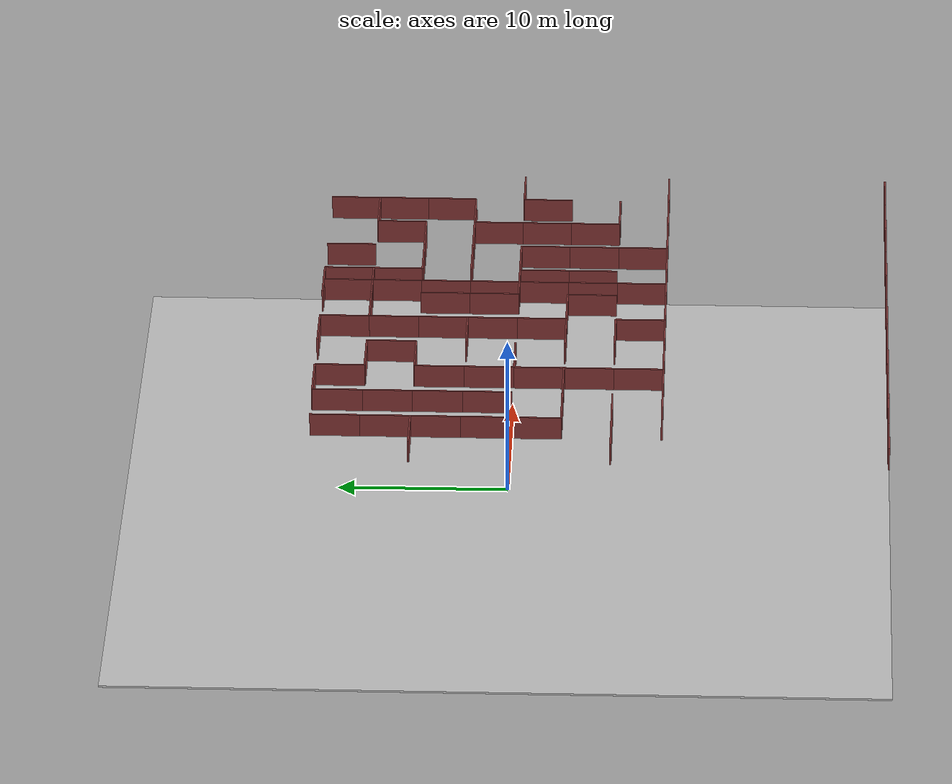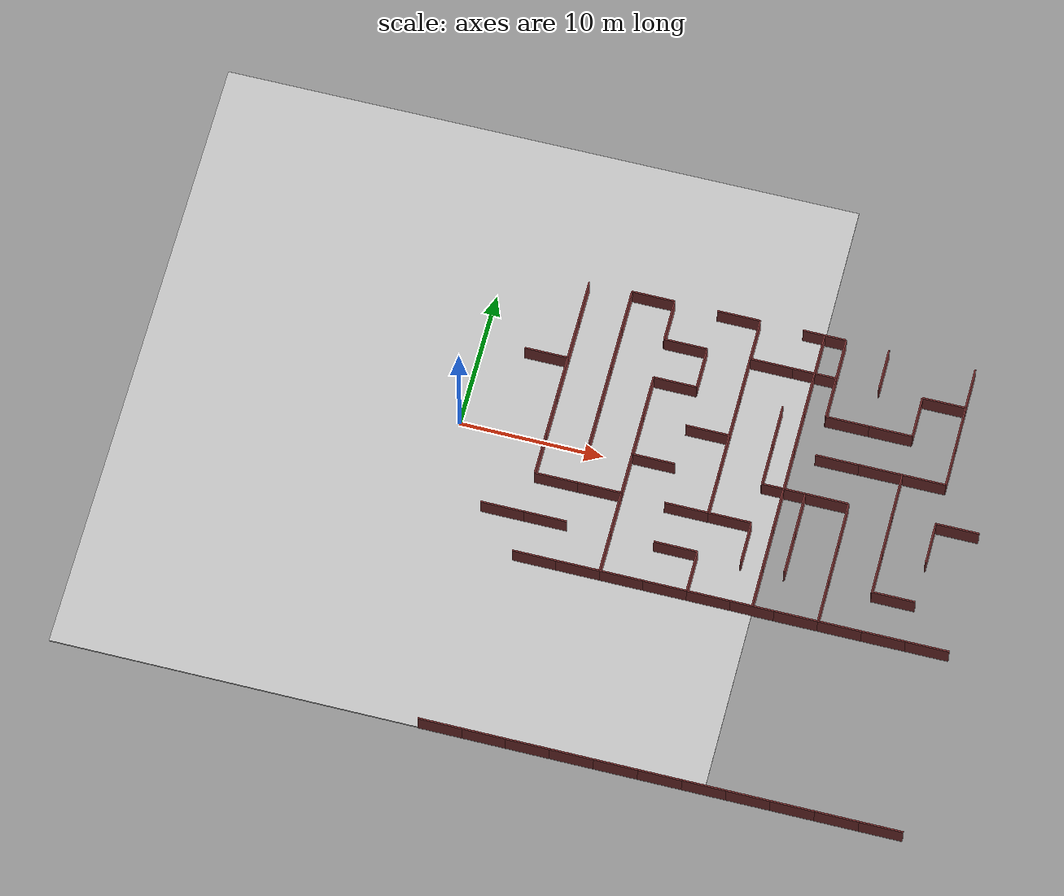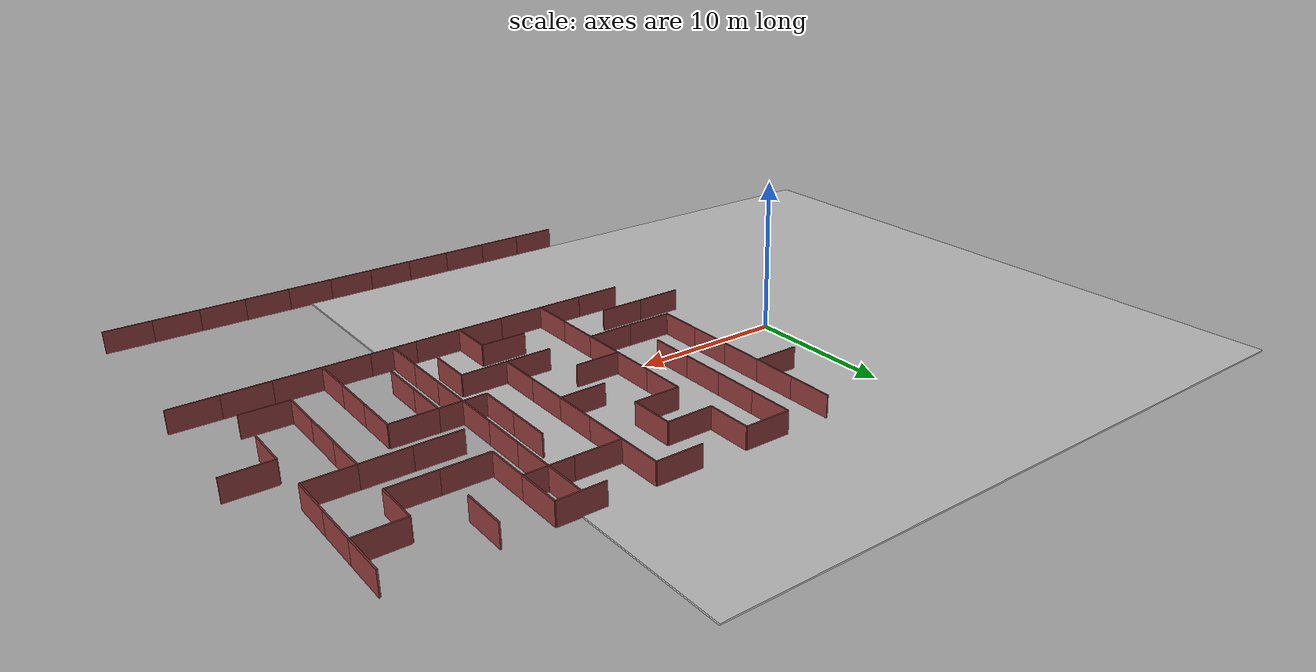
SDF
<sdf version="1.7">
 <world name="maze_world">
  <model name="ground">
   <static>true</static>
   <link name="ground_link">
    <collision name="collision"><geometry><box><size>45 45 0.1</size></box></geometry></collision>
    <visual name="visual">
     <geometry><box><size>45 45 0.1</size></box></geometry>
     <material><diffuse>0.8 0.8 0.8 1</diffuse></material>
    </visual>
   </link>
  </model>
  <model name="wall_n_8">
   <static>true</static>
   <pose>7.5 -9.0 0.75 0 0 0</pose>
   <link name="link">
    <collision name="collision"><geometry><box><size>3 0.1 1.5</size></box></geometry></collision>
    <visual name="visual">
     <geometry><box><size>3 0.1 1.5</size></box></geometry>
     <material><diffuse>0.5 0.2 0.2 1</diffuse></material>
    </visual>
   </link>
  </model>
  <model name="wall_n_9">
   <static>true</static>
   <pose>10.5 -9.0 0.75 0 0 0</pose>
   <link name="link">
    <collision name="collision"><geometry><box><size>3 0.1 1.5</size></box></geometry></collision>
    <visual name="visual">
     <geometry><box><size>3 0.1 1.5</size></box></geometry>
     <material><diffuse>0.5 0.2 0.2 1</diffuse></material>
    </visual>
   </link>
  </model>
  <model name="wall_n_10">
   <static>true</static>
   <pose>13.5 -9.0 0.75 0 0 0</pose>
   <link name="link">
    <collision name="collision"><geometry><box><size>3 0.1 1.5</size></box></geometry></collision>
    <visual name="visual">
     <geometry><box><size>3 0.1 1.5</size></box></geometry>
     <material><diffuse>0.5 0.2 0.2 1</diffuse></material>
    </visual>
   </link>
  </model>
  <model name="wall_w_11">
   <static>true</static>
   <pose>12.0 -7.5 0.75 0 0 1.5708</pose>
   <link name="link">
    <collision name="collision"><geometry><box><size>3 0.1 1.5</size></box></geometry></collision>
    <visual name="visual">
     <geometry><box><size>3 0.1 1.5</size></box></geometry>
     <material><diffuse>0.5 0.2 0.2 1</diffuse></material>
    </visual>
   </link>
  </model>
  <model name="wall_n_12">
   <static>true</static>
   <pose>16.5 -9.0 0.75 0 0 0</pose>
   <link name="link">
    <collision name="collision"><geometry><box><size>3 0.1 1.5</size></box></geometry></collision>
    <visual name="visual">
     <geometry><box><size>3 0.1 1.5</size></box></geometry>
     <material><diffuse>0.5 0.2 0.2 1</diffuse></material>
    </visual>
   </link>
  </model>
  <model name="wall_n_13">
   <static>true</static>
   <pose>19.5 -9.0 0.75 0 0 0</pose>
   <link name="link">
    <collision name="collision"><geometry><box><size>3 0.1 1.5</size></box></geometry></collision>
    <visual name="visual">
     <geometry><box><size>3 0.1 1.5</size></box></geometry>
     <material><diffuse>0.5 0.2 0.2 1</diffuse></material>
    </visual>
   </link>
  </model>
  <model name="wall_w_14">
   <static>true</static>
   <pose>18.0 -7.5 0.75 0 0 1.5708</pose>
   <link name="link">
    <collision name="collision"><geometry><box><size>3 0.1 1.5</size></box></geometry></collision>
    <visual name="visual">
     <geometry><box><size>3 0.1 1.5</size></box></geometry>
     <material><diffuse>0.5 0.2 0.2 1</diffuse></material>
    </visual>
   </link>
  </model>
  <model name="wall_n_15">
   <static>true</static>
   <pose>22.5 -9.0 0.75 0 0 0</pose>
   <link name="link">
    <collision name="collision"><geometry><box><size>3 0.1 1.5</size></box></geometry></collision>
    <visual name="visual">
     <geometry><box><size>3 0.1 1.5</size></box></geometry>
     <material><diffuse>0.5 0.2 0.2 1</diffuse></material>
    </visual>
   </link>
  </model>
  <model name="wall_n_16">
   <static>true</static>
   <pose>25.5 -9.0 0.75 0 0 0</pose>
   <link name="link">
    <collision name="collision"><geometry><box><size>3 0.1 1.5</size></box></geometry></collision>
    <visual name="visual">
     <geometry><box><size>3 0.1 1.5</size></box></geometry>
     <material><diffuse>0.5 0.2 0.2 1</diffuse></material>
    </visual>
   </link>
  </model>
  <model name="wall_n_17">
   <static>true</static>
   <pose>28.5 -9.0 0.75 0 0 0</pose>
   <link name="link">
    <collision name="collision"><geometry><box><size>3 0.1 1.5</size></box></geometry></collision>
    <visual name="visual">
     <geometry><box><size>3 0.1 1.5</size></box></geometry>
     <material><diffuse>0.5 0.2 0.2 1</diffuse></material>
    </visual>
   </link>
  </model>
  <model name="wall_w_18">
   <static>true</static>
   <pose>27.0 -7.5 0.75 0 0 1.5708</pose>
   <link name="link">
    <collision name="collision"><geometry><box><size>3 0.1 1.5</size></box></geometry></collision>
    <visual name="visual">
     <geometry><box><size>3 0.1 1.5</size></box></geometry>
     <material><diffuse>0.5 0.2 0.2 1</diffuse></material>
    </visual>
   </link>
  </model>
  <model name="wall_n_19">
   <static>true</static>
   <pose>31.5 -9.0 0.75 0 0 0</pose>
   <link name="link">
    <collision name="collision"><geometry><box><size>3 0.1 1.5</size></box></geometry></collision>
    <visual name="visual">
     <geometry><box><size>3 0.1 1.5</size></box></geometry>
     <material><diffuse>0.5 0.2 0.2 1</diffuse></material>
    </visual>
   </link>
  </model>
  <model name="wall_n_20">
   <static>true</static>
   <pose>34.5 -9.0 0.75 0 0 0</pose>
   <link name="link">
    <collision name="collision"><geometry><box><size>3 0.1 1.5</size></box></geometry></collision>
    <visual name="visual">
     <geometry><box><size>3 0.1 1.5</size></box></geometry>
     <material><diffuse>0.5 0.2 0.2 1</diffuse></material>
    </visual>
   </link>
  </model>
  <model name="wall_n_25">
   <static>true</static>
   <pose>4.5 -6.0 0.75 0 0 0</pose>
   <link name="link">
    <collision name="collision"><geometry><box><size>3 0.1 1.5</size></box></geometry></collision>
    <visual name="visual">
     <geometry><box><size>3 0.1 1.5</size></box></geometry>
     <material><diffuse>0.5 0.2 0.2 1</diffuse></material>
    </visual>
   </link>
  </model>
  <model name="wall_n_27">
   <static>true</static>
   <pose>7.5 -6.0 0.75 0 0 0</pose>
   <link name="link">
    <collision name="collision"><geometry><box><size>3 0.1 1.5</size></box></geometry></collision>
    <visual name="visual">
     <geometry><box><size>3 0.1 1.5</size></box></geometry>
     <material><diffuse>0.5 0.2 0.2 1</diffuse></material>
    </visual>
   </link>
  </model>
  <model name="wall_w_28">
   <static>true</static>
   <pose>12.0 -4.5 0.75 0 0 1.5708</pose>
   <link name="link">
    <collision name="collision"><geometry><box><size>3 0.1 1.5</size></box></geometry></collision>
    <visual name="visual">
     <geometry><box><size>3 0.1 1.5</size></box></geometry>
     <material><diffuse>0.5 0.2 0.2 1</diffuse></material>
    </visual>
   </link>
  </model>
  <model name="wall_n_29">
   <static>true</static>
   <pose>16.5 -6.0 0.75 0 0 0</pose>
   <link name="link">
    <collision name="collision"><geometry><box><size>3 0.1 1.5</size></box></geometry></collision>
    <visual name="visual">
     <geometry><box><size>3 0.1 1.5</size></box></geometry>
     <material><diffuse>0.5 0.2 0.2 1</diffuse></material>
    </visual>
   </link>
  </model>
  <model name="wall_w_30">
   <static>true</static>
   <pose>21.0 -4.5 0.75 0 0 1.5708</pose>
   <link name="link">
    <collision name="collision"><geometry><box><size>3 0.1 1.5</size></box></geometry></collision>
    <visual name="visual">
     <geometry><box><size>3 0.1 1.5</size></box></geometry>
     <material><diffuse>0.5 0.2 0.2 1</diffuse></material>
    </visual>
   </link>
  </model>
  <model name="wall_w_31">
   <static>true</static>
   <pose>24.0 -4.5 0.75 0 0 1.5708</pose>
   <link name="link">
    <collision name="collision"><geometry><box><size>3 0.1 1.5</size></box></geometry></collision>
    <visual name="visual">
     <geometry><box><size>3 0.1 1.5</size></box></geometry>
     <material><diffuse>0.5 0.2 0.2 1</diffuse></material>
    </visual>
   </link>
  </model>
  <model name="wall_w_32">
   <static>true</static>
   <pose>27.0 -4.5 0.75 0 0 1.5708</pose>
   <link name="link">
    <collision name="collision"><geometry><box><size>3 0.1 1.5</size></box></geometry></collision>
    <visual name="visual">
     <geometry><box><size>3 0.1 1.5</size></box></geometry>
     <material><diffuse>0.5 0.2 0.2 1</diffuse></material>
    </visual>
   </link>
  </model>
  <model name="wall_n_33">
   <static>true</static>
   <pose>31.5 -6.0 0.75 0 0 0</pose>
   <link name="link">
    <collision name="collision"><geometry><box><size>3 0.1 1.5</size></box></geometry></collision>
    <visual name="visual">
     <geometry><box><size>3 0.1 1.5</size></box></geometry>
     <material><diffuse>0.5 0.2 0.2 1</diffuse></material>
    </visual>
   </link>
  </model>
  <model name="wall_w_34">
   <static>true</static>
   <pose>30.0 -4.5 0.75 0 0 1.5708</pose>
   <link name="link">
    <collision name="collision"><geometry><box><size>3 0.1 1.5</size></box></geometry></collision>
    <visual name="visual">
     <geometry><box><size>3 0.1 1.5</size></box></geometry>
     <material><diffuse>0.5 0.2 0.2 1</diffuse></material>
    </visual>
   </link>
  </model>
  <model name="wall_n_40">
   <static>true</static>
   <pose>7.5 -3.0 0.75 0 0 0</pose>
   <link name="link">
    <collision name="collision"><geometry><box><size>3 0.1 1.5</size></box></geometry></collision>
    <visual name="visual">
     <geometry><box><size>3 0.1 1.5</size></box></geometry>
     <material><diffuse>0.5 0.2 0.2 1</diffuse></material>
    </visual>
   </link>
  </model>
  <model name="wall_w_41">
   <static>true</static>
   <pose>6.0 -1.5 0.75 0 0 1.5708</pose>
   <link name="link">
    <collision name="collision"><geometry><box><size>3 0.1 1.5</size></box></geometry></collision>
    <visual name="visual">
     <geometry><box><size>3 0.1 1.5</size></box></geometry>
     <material><diffuse>0.5 0.2 0.2 1</diffuse></material>
    </visual>
   </link>
  </model>
  <model name="wall_n_42">
   <static>true</static>
   <pose>10.5 -3.0 0.75 0 0 0</pose>
   <link name="link">
    <collision name="collision"><geometry><box><size>3 0.1 1.5</size></box></geometry></collision>
    <visual name="visual">
     <geometry><box><size>3 0.1 1.5</size></box></geometry>
     <material><diffuse>0.5 0.2 0.2 1</diffuse></material>
    </visual>
   </link>
  </model>
  <model name="wall_w_43">
   <static>true</static>
   <pose>12.0 -1.5 0.75 0 0 1.5708</pose>
   <link name="link">
    <collision name="collision"><geometry><box><size>3 0.1 1.5</size></box></geometry></collision>
    <visual name="visual">
     <geometry><box><size>3 0.1 1.5</size></box></geometry>
     <material><diffuse>0.5 0.2 0.2 1</diffuse></material>
    </visual>
   </link>
  </model>
  <model name="wall_n_44">
   <static>true</static>
   <pose>16.5 -3.0 0.75 0 0 0</pose>
   <link name="link">
    <collision name="collision"><geometry><box><size>3 0.1 1.5</size></box></geometry></collision>
    <visual name="visual">
     <geometry><box><size>3 0.1 1.5</size></box></geometry>
     <material><diffuse>0.5 0.2 0.2 1</diffuse></material>
    </visual>
   </link>
  </model>
  <model name="wall_n_45">
   <static>true</static>
   <pose>19.5 -3.0 0.75 0 0 0</pose>
   <link name="link">
    <collision name="collision"><geometry><box><size>3 0.1 1.5</size></box></geometry></collision>
    <visual name="visual">
     <geometry><box><size>3 0.1 1.5</size></box></geometry>
     <material><diffuse>0.5 0.2 0.2 1</diffuse></material>
    </visual>
   </link>
  </model>
  <model name="wall_w_46">
   <static>true</static>
   <pose>18.0 -1.5 0.75 0 0 1.5708</pose>
   <link name="link">
    <collision name="collision"><geometry><box><size>3 0.1 1.5</size></box></geometry></collision>
    <visual name="visual">
     <geometry><box><size>3 0.1 1.5</size></box></geometry>
     <material><diffuse>0.5 0.2 0.2 1</diffuse></material>
    </visual>
   </link>
  </model>
  <model name="wall_w_47">
   <static>true</static>
   <pose>24.0 -1.5 0.75 0 0 1.5708</pose>
   <link name="link">
    <collision name="collision"><geometry><box><size>3 0.1 1.5</size></box></geometry></collision>
    <visual name="visual">
     <geometry><box><size>3 0.1 1.5</size></box></geometry>
     <material><diffuse>0.5 0.2 0.2 1</diffuse></material>
    </visual>
   </link>
  </model>
  <model name="wall_w_48">
   <static>true</static>
   <pose>27.0 -1.5 0.75 0 0 1.5708</pose>
   <link name="link">
    <collision name="collision"><geometry><box><size>3 0.1 1.5</size></box></geometry></collision>
    <visual name="visual">
     <geometry><box><size>3 0.1 1.5</size></box></geometry>
     <material><diffuse>0.5 0.2 0.2 1</diffuse></material>
    </visual>
   </link>
  </model>
  <model name="wall_w_49">
   <static>true</static>
   <pose>30.0 -1.5 0.75 0 0 1.5708</pose>
   <link name="link">
    <collision name="collision"><geometry><box><size>3 0.1 1.5</size></box></geometry></collision>
    <visual name="visual">
     <geometry><box><size>3 0.1 1.5</size></box></geometry>
     <material><diffuse>0.5 0.2 0.2 1</diffuse></material>
    </visual>
   </link>
  </model>
  <model name="wall_w_50">
   <static>true</static>
   <pose>33.0 -1.5 0.75 0 0 1.5708</pose>
   <link name="link">
    <collision name="collision"><geometry><box><size>3 0.1 1.5</size></box></geometry></collision>
    <visual name="visual">
     <geometry><box><size>3 0.1 1.5</size></box></geometry>
     <material><diffuse>0.5 0.2 0.2 1</diffuse></material>
    </visual>
   </link>
  </model>
  <model name="wall_w_57">
   <static>true</static>
   <pose>6.0 1.5 0.75 0 0 1.5708</pose>
   <link name="link">
    <collision name="collision"><geometry><box><size>3 0.1 1.5</size></box></geometry></collision>
    <visual name="visual">
     <geometry><box><size>3 0.1 1.5</size></box></geometry>
     <material><diffuse>0.5 0.2 0.2 1</diffuse></material>
    </visual>
   </link>
  </model>
  <model name="wall_w_58">
   <static>true</static>
   <pose>9.0 1.5 0.75 0 0 1.5708</pose>
   <link name="link">
    <collision name="collision"><geometry><box><size>3 0.1 1.5</size></box></geometry></collision>
    <visual name="visual">
     <geometry><box><size>3 0.1 1.5</size></box></geometry>
     <material><diffuse>0.5 0.2 0.2 1</diffuse></material>
    </visual>
   </link>
  </model>
  <model name="wall_n_59">
   <static>true</static>
   <pose>13.5 0.0 0.75 0 0 0</pose>
   <link name="link">
    <collision name="collision"><geometry><box><size>3 0.1 1.5</size></box></geometry></collision>
    <visual name="visual">
     <geometry><box><size>3 0.1 1.5</size></box></geometry>
     <material><diffuse>0.5 0.2 0.2 1</diffuse></material>
    </visual>
   </link>
  </model>
  <model name="wall_w_60">
   <static>true</static>
   <pose>12.0 1.5 0.75 0 0 1.5708</pose>
   <link name="link">
    <collision name="collision"><geometry><box><size>3 0.1 1.5</size></box></geometry></collision>
    <visual name="visual">
     <geometry><box><size>3 0.1 1.5</size></box></geometry>
     <material><diffuse>0.5 0.2 0.2 1</diffuse></material>
    </visual>
   </link>
  </model>
  <model name="wall_w_61">
   <static>true</static>
   <pose>18.0 1.5 0.75 0 0 1.5708</pose>
   <link name="link">
    <collision name="collision"><geometry><box><size>3 0.1 1.5</size></box></geometry></collision>
    <visual name="visual">
     <geometry><box><size>3 0.1 1.5</size></box></geometry>
     <material><diffuse>0.5 0.2 0.2 1</diffuse></material>
    </visual>
   </link>
  </model>
  <model name="wall_n_62">
   <static>true</static>
   <pose>22.5 0.0 0.75 0 0 0</pose>
   <link name="link">
    <collision name="collision"><geometry><box><size>3 0.1 1.5</size></box></geometry></collision>
    <visual name="visual">
     <geometry><box><size>3 0.1 1.5</size></box></geometry>
     <material><diffuse>0.5 0.2 0.2 1</diffuse></material>
    </visual>
   </link>
  </model>
  <model name="wall_w_63">
   <static>true</static>
   <pose>21.0 1.5 0.75 0 0 1.5708</pose>
   <link name="link">
    <collision name="collision"><geometry><box><size>3 0.1 1.5</size></box></geometry></collision>
    <visual name="visual">
     <geometry><box><size>3 0.1 1.5</size></box></geometry>
     <material><diffuse>0.5 0.2 0.2 1</diffuse></material>
    </visual>
   </link>
  </model>
  <model name="wall_n_64">
   <static>true</static>
   <pose>25.5 0.0 0.75 0 0 0</pose>
   <link name="link">
    <collision name="collision"><geometry><box><size>3 0.1 1.5</size></box></geometry></collision>
    <visual name="visual">
     <geometry><box><size>3 0.1 1.5</size></box></geometry>
     <material><diffuse>0.5 0.2 0.2 1</diffuse></material>
    </visual>
   </link>
  </model>
  <model name="wall_w_65">
   <static>true</static>
   <pose>30.0 1.5 0.75 0 0 1.5708</pose>
   <link name="link">
    <collision name="collision"><geometry><box><size>3 0.1 1.5</size></box></geometry></collision>
    <visual name="visual">
     <geometry><box><size>3 0.1 1.5</size></box></geometry>
     <material><diffuse>0.5 0.2 0.2 1</diffuse></material>
    </visual>
   </link>
  </model>
  <model name="wall_n_66">
   <static>true</static>
   <pose>34.5 0.0 0.75 0 0 0</pose>
   <link name="link">
    <collision name="collision"><geometry><box><size>3 0.1 1.5</size></box></geometry></collision>
    <visual name="visual">
     <geometry><box><size>3 0.1 1.5</size></box></geometry>
     <material><diffuse>0.5 0.2 0.2 1</diffuse></material>
    </visual>
   </link>
  </model>
  <model name="wall_w_71">
   <static>true</static>
   <pose>6.0 4.5 0.75 0 0 1.5708</pose>
   <link name="link">
    <collision name="collision"><geometry><box><size>3 0.1 1.5</size></box></geometry></collision>
    <visual name="visual">
     <geometry><box><size>3 0.1 1.5</size></box></geometry>
     <material><diffuse>0.5 0.2 0.2 1</diffuse></material>
    </visual>
   </link>
  </model>
  <model name="wall_w_72">
   <static>true</static>
   <pose>9.0 4.5 0.75 0 0 1.5708</pose>
   <link name="link">
    <collision name="collision"><geometry><box><size>3 0.1 1.5</size></box></geometry></collision>
    <visual name="visual">
     <geometry><box><size>3 0.1 1.5</size></box></geometry>
     <material><diffuse>0.5 0.2 0.2 1</diffuse></material>
    </visual>
   </link>
  </model>
  <model name="wall_w_73">
   <static>true</static>
   <pose>12.0 4.5 0.75 0 0 1.5708</pose>
   <link name="link">
    <collision name="collision"><geometry><box><size>3 0.1 1.5</size></box></geometry></collision>
    <visual name="visual">
     <geometry><box><size>3 0.1 1.5</size></box></geometry>
     <material><diffuse>0.5 0.2 0.2 1</diffuse></material>
    </visual>
   </link>
  </model>
  <model name="wall_n_74">
   <static>true</static>
   <pose>16.5 3.0 0.75 0 0 0</pose>
   <link name="link">
    <collision name="collision"><geometry><box><size>3 0.1 1.5</size></box></geometry></collision>
    <visual name="visual">
     <geometry><box><size>3 0.1 1.5</size></box></geometry>
     <material><diffuse>0.5 0.2 0.2 1</diffuse></material>
    </visual>
   </link>
  </model>
  <model name="wall_w_75">
   <static>true</static>
   <pose>18.0 4.5 0.75 0 0 1.5708</pose>
   <link name="link">
    <collision name="collision"><geometry><box><size>3 0.1 1.5</size></box></geometry></collision>
    <visual name="visual">
     <geometry><box><size>3 0.1 1.5</size></box></geometry>
     <material><diffuse>0.5 0.2 0.2 1</diffuse></material>
    </visual>
   </link>
  </model>
  <model name="wall_w_76">
   <static>true</static>
   <pose>21.0 4.5 0.75 0 0 1.5708</pose>
   <link name="link">
    <collision name="collision"><geometry><box><size>3 0.1 1.5</size></box></geometry></collision>
    <visual name="visual">
     <geometry><box><size>3 0.1 1.5</size></box></geometry>
     <material><diffuse>0.5 0.2 0.2 1</diffuse></material>
    </visual>
   </link>
  </model>
  <model name="wall_n_77">
   <static>true</static>
   <pose>25.5 3.0 0.75 0 0 0</pose>
   <link name="link">
    <collision name="collision"><geometry><box><size>3 0.1 1.5</size></box></geometry></collision>
    <visual name="visual">
     <geometry><box><size>3 0.1 1.5</size></box></geometry>
     <material><diffuse>0.5 0.2 0.2 1</diffuse></material>
    </visual>
   </link>
  </model>
  <model name="wall_n_78">
   <static>true</static>
   <pose>28.5 3.0 0.75 0 0 0</pose>
   <link name="link">
    <collision name="collision"><geometry><box><size>3 0.1 1.5</size></box></geometry></collision>
    <visual name="visual">
     <geometry><box><size>3 0.1 1.5</size></box></geometry>
     <material><diffuse>0.5 0.2 0.2 1</diffuse></material>
    </visual>
   </link>
  </model>
  <model name="wall_n_79">
   <static>true</static>
   <pose>31.5 3.0 0.75 0 0 0</pose>
   <link name="link">
    <collision name="collision"><geometry><box><size>3 0.1 1.5</size></box></geometry></collision>
    <visual name="visual">
     <geometry><box><size>3 0.1 1.5</size></box></geometry>
     <material><diffuse>0.5 0.2 0.2 1</diffuse></material>
    </visual>
   </link>
  </model>
  <model name="wall_w_80">
   <static>true</static>
   <pose>33.0 4.5 0.75 0 0 1.5708</pose>
   <link name="link">
    <collision name="collision"><geometry><box><size>3 0.1 1.5</size></box></geometry></collision>
    <visual name="visual">
     <geometry><box><size>3 0.1 1.5</size></box></geometry>
     <material><diffuse>0.5 0.2 0.2 1</diffuse></material>
    </visual>
   </link>
  </model>
  <model name="wall_n_86">
   <static>true</static>
   <pose>4.5 6.0 0.75 0 0 0</pose>
   <link name="link">
    <collision name="collision"><geometry><box><size>3 0.1 1.5</size></box></geometry></collision>
    <visual name="visual">
     <geometry><box><size>3 0.1 1.5</size></box></geometry>
     <material><diffuse>0.5 0.2 0.2 1</diffuse></material>
    </visual>
   </link>
  </model>
  <model name="wall_w_87">
   <static>true</static>
   <pose>6.0 7.5 0.75 0 0 1.5708</pose>
   <link name="link">
    <collision name="collision"><geometry><box><size>3 0.1 1.5</size></box></geometry></collision>
    <visual name="visual">
     <geometry><box><size>3 0.1 1.5</size></box></geometry>
     <material><diffuse>0.5 0.2 0.2 1</diffuse></material>
    </visual>
   </link>
  </model>
  <model name="wall_w_88">
   <static>true</static>
   <pose>9.0 7.5 0.75 0 0 1.5708</pose>
   <link name="link">
    <collision name="collision"><geometry><box><size>3 0.1 1.5</size></box></geometry></collision>
    <visual name="visual">
     <geometry><box><size>3 0.1 1.5</size></box></geometry>
     <material><diffuse>0.5 0.2 0.2 1</diffuse></material>
    </visual>
   </link>
  </model>
  <model name="wall_n_89">
   <static>true</static>
   <pose>13.5 6.0 0.75 0 0 0</pose>
   <link name="link">
    <collision name="collision"><geometry><box><size>3 0.1 1.5</size></box></geometry></collision>
    <visual name="visual">
     <geometry><box><size>3 0.1 1.5</size></box></geometry>
     <material><diffuse>0.5 0.2 0.2 1</diffuse></material>
    </visual>
   </link>
  </model>
  <model name="wall_w_90">
   <static>true</static>
   <pose>15.0 7.5 0.75 0 0 1.5708</pose>
   <link name="link">
    <collision name="collision"><geometry><box><size>3 0.1 1.5</size></box></geometry></collision>
    <visual name="visual">
     <geometry><box><size>3 0.1 1.5</size></box></geometry>
     <material><diffuse>0.5 0.2 0.2 1</diffuse></material>
    </visual>
   </link>
  </model>
  <model name="wall_w_91">
   <static>true</static>
   <pose>18.0 7.5 0.75 0 0 1.5708</pose>
   <link name="link">
    <collision name="collision"><geometry><box><size>3 0.1 1.5</size></box></geometry></collision>
    <visual name="visual">
     <geometry><box><size>3 0.1 1.5</size></box></geometry>
     <material><diffuse>0.5 0.2 0.2 1</diffuse></material>
    </visual>
   </link>
  </model>
  <model name="wall_n_92">
   <static>true</static>
   <pose>25.5 6.0 0.75 0 0 0</pose>
   <link name="link">
    <collision name="collision"><geometry><box><size>3 0.1 1.5</size></box></geometry></collision>
    <visual name="visual">
     <geometry><box><size>3 0.1 1.5</size></box></geometry>
     <material><diffuse>0.5 0.2 0.2 1</diffuse></material>
    </visual>
   </link>
  </model>
  <model name="wall_w_93">
   <static>true</static>
   <pose>24.0 7.5 0.75 0 0 1.5708</pose>
   <link name="link">
    <collision name="collision"><geometry><box><size>3 0.1 1.5</size></box></geometry></collision>
    <visual name="visual">
     <geometry><box><size>3 0.1 1.5</size></box></geometry>
     <material><diffuse>0.5 0.2 0.2 1</diffuse></material>
    </visual>
   </link>
  </model>
  <model name="wall_n_94">
   <static>true</static>
   <pose>28.5 6.0 0.75 0 0 0</pose>
   <link name="link">
    <collision name="collision"><geometry><box><size>3 0.1 1.5</size></box></geometry></collision>
    <visual name="visual">
     <geometry><box><size>3 0.1 1.5</size></box></geometry>
     <material><diffuse>0.5 0.2 0.2 1</diffuse></material>
    </visual>
   </link>
  </model>
  <model name="wall_w_95">
   <static>true</static>
   <pose>30.0 7.5 0.75 0 0 1.5708</pose>
   <link name="link">
    <collision name="collision"><geometry><box><size>3 0.1 1.5</size></box></geometry></collision>
    <visual name="visual">
     <geometry><box><size>3 0.1 1.5</size></box></geometry>
     <material><diffuse>0.5 0.2 0.2 1</diffuse></material>
    </visual>
   </link>
  </model>
  <model name="wall_w_96">
   <static>true</static>
   <pose>33.0 7.5 0.75 0 0 1.5708</pose>
   <link name="link">
    <collision name="collision"><geometry><box><size>3 0.1 1.5</size></box></geometry></collision>
    <visual name="visual">
     <geometry><box><size>3 0.1 1.5</size></box></geometry>
     <material><diffuse>0.5 0.2 0.2 1</diffuse></material>
    </visual>
   </link>
  </model>
  <model name="wall_w_101">
   <static>true</static>
   <pose>6.0 10.5 0.75 0 0 1.5708</pose>
   <link name="link">
    <collision name="collision"><geometry><box><size>3 0.1 1.5</size></box></geometry></collision>
    <visual name="visual">
     <geometry><box><size>3 0.1 1.5</size></box></geometry>
     <material><diffuse>0.5 0.2 0.2 1</diffuse></material>
    </visual>
   </link>
  </model>
  <model name="wall_w_102">
   <static>true</static>
   <pose>9.0 10.5 0.75 0 0 1.5708</pose>
   <link name="link">
    <collision name="collision"><geometry><box><size>3 0.1 1.5</size></box></geometry></collision>
    <visual name="visual">
     <geometry><box><size>3 0.1 1.5</size></box></geometry>
     <material><diffuse>0.5 0.2 0.2 1</diffuse></material>
    </visual>
   </link>
  </model>
  <model name="wall_n_103">
   <static>true</static>
   <pose>13.5 9.0 0.75 0 0 0</pose>
   <link name="link">
    <collision name="collision"><geometry><box><size>3 0.1 1.5</size></box></geometry></collision>
    <visual name="visual">
     <geometry><box><size>3 0.1 1.5</size></box></geometry>
     <material><diffuse>0.5 0.2 0.2 1</diffuse></material>
    </visual>
   </link>
  </model>
  <model name="wall_w_104">
   <static>true</static>
   <pose>12.0 10.5 0.75 0 0 1.5708</pose>
   <link name="link">
    <collision name="collision"><geometry><box><size>3 0.1 1.5</size></box></geometry></collision>
    <visual name="visual">
     <geometry><box><size>3 0.1 1.5</size></box></geometry>
     <material><diffuse>0.5 0.2 0.2 1</diffuse></material>
    </visual>
   </link>
  </model>
  <model name="wall_n_105">
   <static>true</static>
   <pose>19.5 9.0 0.75 0 0 0</pose>
   <link name="link">
    <collision name="collision"><geometry><box><size>3 0.1 1.5</size></box></geometry></collision>
    <visual name="visual">
     <geometry><box><size>3 0.1 1.5</size></box></geometry>
     <material><diffuse>0.5 0.2 0.2 1</diffuse></material>
    </visual>
   </link>
  </model>
  <model name="wall_w_106">
   <static>true</static>
   <pose>18.0 10.5 0.75 0 0 1.5708</pose>
   <link name="link">
    <collision name="collision"><geometry><box><size>3 0.1 1.5</size></box></geometry></collision>
    <visual name="visual">
     <geometry><box><size>3 0.1 1.5</size></box></geometry>
     <material><diffuse>0.5 0.2 0.2 1</diffuse></material>
    </visual>
   </link>
  </model>
  <model name="wall_n_107">
   <static>true</static>
   <pose>22.5 9.0 0.75 0 0 0</pose>
   <link name="link">
    <collision name="collision"><geometry><box><size>3 0.1 1.5</size></box></geometry></collision>
    <visual name="visual">
     <geometry><box><size>3 0.1 1.5</size></box></geometry>
     <material><diffuse>0.5 0.2 0.2 1</diffuse></material>
    </visual>
   </link>
  </model>
  <model name="wall_w_108">
   <static>true</static>
   <pose>24.0 10.5 0.75 0 0 1.5708</pose>
   <link name="link">
    <collision name="collision"><geometry><box><size>3 0.1 1.5</size></box></geometry></collision>
    <visual name="visual">
     <geometry><box><size>3 0.1 1.5</size></box></geometry>
     <material><diffuse>0.5 0.2 0.2 1</diffuse></material>
    </visual>
   </link>
  </model>
  <model name="wall_w_109">
   <static>true</static>
   <pose>27.0 10.5 0.75 0 0 1.5708</pose>
   <link name="link">
    <collision name="collision"><geometry><box><size>3 0.1 1.5</size></box></geometry></collision>
    <visual name="visual">
     <geometry><box><size>3 0.1 1.5</size></box></geometry>
     <material><diffuse>0.5 0.2 0.2 1</diffuse></material>
    </visual>
   </link>
  </model>
  <model name="wall_n_110">
   <static>true</static>
   <pose>31.5 9.0 0.75 0 0 0</pose>
   <link name="link">
    <collision name="collision"><geometry><box><size>3 0.1 1.5</size></box></geometry></collision>
    <visual name="visual">
     <geometry><box><size>3 0.1 1.5</size></box></geometry>
     <material><diffuse>0.5 0.2 0.2 1</diffuse></material>
    </visual>
   </link>
  </model>
  <model name="wall_w_111">
   <static>true</static>
   <pose>33.0 10.5 0.75 0 0 1.5708</pose>
   <link name="link">
    <collision name="collision"><geometry><box><size>3 0.1 1.5</size></box></geometry></collision>
    <visual name="visual">
     <geometry><box><size>3 0.1 1.5</size></box></geometry>
     <material><diffuse>0.5 0.2 0.2 1</diffuse></material>
    </visual>
   </link>
  </model>
  <model name="wall_n_118">
   <static>true</static>
   <pose>10.5 12.0 0.75 0 0 0</pose>
   <link name="link">
    <collision name="collision"><geometry><box><size>3 0.1 1.5</size></box></geometry></collision>
    <visual name="visual">
     <geometry><box><size>3 0.1 1.5</size></box></geometry>
     <material><diffuse>0.5 0.2 0.2 1</diffuse></material>
    </visual>
   </link>
  </model>
  <model name="wall_n_119">
   <static>true</static>
   <pose>16.5 12.0 0.75 0 0 0</pose>
   <link name="link">
    <collision name="collision"><geometry><box><size>3 0.1 1.5</size></box></geometry></collision>
    <visual name="visual">
     <geometry><box><size>3 0.1 1.5</size></box></geometry>
     <material><diffuse>0.5 0.2 0.2 1</diffuse></material>
    </visual>
   </link>
  </model>
  <model name="wall_n_121">
   <static>true</static>
   <pose>22.5 12.0 0.75 0 0 0</pose>
   <link name="link">
    <collision name="collision"><geometry><box><size>3 0.1 1.5</size></box></geometry></collision>
    <visual name="visual">
     <geometry><box><size>3 0.1 1.5</size></box></geometry>
     <material><diffuse>0.5 0.2 0.2 1</diffuse></material>
    </visual>
   </link>
  </model>
  <model name="wall_bottom_4">
   <static>true</static>
   <pose>4.5 -22.5 0.75 0 0 0</pose>
   <link name="link">
    <collision name="collision"><geometry><box><size>3 0.1 1.5</size></box></geometry></collision>
    <visual name="visual">
     <geometry><box><size>3 0.1 1.5</size></box></geometry>
     <material><diffuse>0.5 0.2 0.2 1</diffuse></material>
    </visual>
   </link>
  </model>
  <model name="wall_bottom_5">
   <static>true</static>
   <pose>7.5 -22.5 0.75 0 0 0</pose>
   <link name="link">
    <collision name="collision"><geometry><box><size>3 0.1 1.5</size></box></geometry></collision>
    <visual name="visual">
     <geometry><box><size>3 0.1 1.5</size></box></geometry>
     <material><diffuse>0.5 0.2 0.2 1</diffuse></material>
    </visual>
   </link>
  </model>
  <model name="wall_bottom_6">
   <static>true</static>
   <pose>10.5 -22.5 0.75 0 0 0</pose>
   <link name="link">
    <collision name="collision"><geometry><box><size>3 0.1 1.5</size></box></geometry></collision>
    <visual name="visual">
     <geometry><box><size>3 0.1 1.5</size></box></geometry>
     <material><diffuse>0.5 0.2 0.2 1</diffuse></material>
    </visual>
   </link>
  </model>
  <model name="wall_bottom_7">
   <static>true</static>
   <pose>13.5 -22.5 0.75 0 0 0</pose>
   <link name="link">
    <collision name="collision"><geometry><box><size>3 0.1 1.5</size></box></geometry></collision>
    <visual name="visual">
     <geometry><box><size>3 0.1 1.5</size></box></geometry>
     <material><diffuse>0.5 0.2 0.2 1</diffuse></material>
    </visual>
   </link>
  </model>
  <model name="wall_bottom_8">
   <static>true</static>
   <pose>16.5 -22.5 0.75 0 0 0</pose>
   <link name="link">
    <collision name="collision"><geometry><box><size>3 0.1 1.5</size></box></geometry></collision>
    <visual name="visual">
     <geometry><box><size>3 0.1 1.5</size></box></geometry>
     <material><diffuse>0.5 0.2 0.2 1</diffuse></material>
    </visual>
   </link>
  </model>
  <model name="wall_bottom_9">
   <static>true</static>
   <pose>19.5 -22.5 0.75 0 0 0</pose>
   <link name="link">
    <collision name="collision"><geometry><box><size>3 0.1 1.5</size></box></geometry></collision>
    <visual name="visual">
     <geometry><box><size>3 0.1 1.5</size></box></geometry>
     <material><diffuse>0.5 0.2 0.2 1</diffuse></material>
    </visual>
   </link>
  </model>
  <model name="wall_bottom_10">
   <static>true</static>
   <pose>22.5 -22.5 0.75 0 0 0</pose>
   <link name="link">
    <collision name="collision"><geometry><box><size>3 0.1 1.5</size></box></geometry></collision>
    <visual name="visual">
     <geometry><box><size>3 0.1 1.5</size></box></geometry>
     <material><diffuse>0.5 0.2 0.2 1</diffuse></material>
    </visual>
   </link>
  </model>
  <model name="wall_bottom_11">
   <static>true</static>
   <pose>25.5 -22.5 0.75 0 0 0</pose>
   <link name="link">
    <collision name="collision"><geometry><box><size>3 0.1 1.5</size></box></geometry></collision>
    <visual name="visual">
     <geometry><box><size>3 0.1 1.5</size></box></geometry>
     <material><diffuse>0.5 0.2 0.2 1</diffuse></material>
    </visual>
   </link>
  </model>
  <model name="wall_bottom_12">
   <static>true</static>
   <pose>28.5 -22.5 0.75 0 0 0</pose>
   <link name="link">
    <collision name="collision"><geometry><box><size>3 0.1 1.5</size></box></geometry></collision>
    <visual name="visual">
     <geometry><box><size>3 0.1 1.5</size></box></geometry>
     <material><diffuse>0.5 0.2 0.2 1</diffuse></material>
    </visual>
   </link>
  </model>
  <model name="wall_bottom_13">
   <static>true</static>
   <pose>31.5 -22.5 0.75 0 0 0</pose>
   <link name="link">
    <collision name="collision"><geometry><box><size>3 0.1 1.5</size></box></geometry></collision>
    <visual name="visual">
     <geometry><box><size>3 0.1 1.5</size></box></geometry>
     <material><diffuse>0.5 0.2 0.2 1</diffuse></material>
    </visual>
   </link>
  </model>
  <model name="wall_bottom_14">
   <static>true</static>
   <pose>34.5 -22.5 0.75 0 0 0</pose>
   <link name="link">
    <collision name="collision"><geometry><box><size>3 0.1 1.5</size></box></geometry></collision>
    <visual name="visual">
     <geometry><box><size>3 0.1 1.5</size></box></geometry>
     <material><diffuse>0.5 0.2 0.2 1</diffuse></material>
    </visual>
   </link>
  </model>
  <model name="wall_right_0">
   <static>true</static>
   <pose>22.5 -7.5 0.75 0 0 1.5708</pose>
   <link name="link">
    <collision name="collision"><geometry><box><size>3 0.1 1.5</size></box></geometry></collision>
    <visual name="visual">
     <geometry><box><size>3 0.1 1.5</size></box></geometry>
     <material><diffuse>0.5 0.2 0.2 1</diffuse></material>
    </visual>
   </link>
  </model>
  <model name="wall_right_1">
   <static>true</static>
   <pose>22.5 -4.5 0.75 0 0 1.5708</pose>
   <link name="link">
    <collision name="collision"><geometry><box><size>3 0.1 1.5</size></box></geometry></collision>
    <visual name="visual">
     <geometry><box><size>3 0.1 1.5</size></box></geometry>
     <material><diffuse>0.5 0.2 0.2 1</diffuse></material>
    </visual>
   </link>
  </model>
  <model name="wall_right_2">
   <static>true</static>
   <pose>22.5 -1.5 0.75 0 0 1.5708</pose>
   <link name="link">
    <collision name="collision"><geometry><box><size>3 0.1 1.5</size></box></geometry></collision>
    <visual name="visual">
     <geometry><box><size>3 0.1 1.5</size></box></geometry>
     <material><diffuse>0.5 0.2 0.2 1</diffuse></material>
    </visual>
   </link>
  </model>
  <model name="wall_right_3">
   <static>true</static>
   <pose>22.5 1.5 0.75 0 0 1.5708</pose>
   <link name="link">
    <collision name="collision"><geometry><box><size>3 0.1 1.5</size></box></geometry></collision>
    <visual name="visual">
     <geometry><box><size>3 0.1 1.5</size></box></geometry>
     <material><diffuse>0.5 0.2 0.2 1</diffuse></material>
    </visual>
   </link>
  </model>
  <model name="wall_right_4">
   <static>true</static>
   <pose>22.5 4.5 0.75 0 0 1.5708</pose>
   <link name="link">
    <collision name="collision"><geometry><box><size>3 0.1 1.5</size></box></geometry></collision>
    <visual name="visual">
     <geometry><box><size>3 0.1 1.5</size></box></geometry>
     <material><diffuse>0.5 0.2 0.2 1</diffuse></material>
    </visual>
   </link>
  </model>
  <model name="wall_right_5">
   <static>true</static>
   <pose>22.5 7.5 0.75 0 0 1.5708</pose>
   <link name="link">
    <collision name="collision"><geometry><box><size>3 0.1 1.5</size></box></geometry></collision>
    <visual name="visual">
     <geometry><box><size>3 0.1 1.5</size></box></geometry>
     <material><diffuse>0.5 0.2 0.2 1</diffuse></material>
    </visual>
   </link>
  </model>
  <model name="wall_right_6">
   <static>true</static>
   <pose>22.5 10.5 0.75 0 0 1.5708</pose>
   <link name="link">
    <collision name="collision"><geometry><box><size>3 0.1 1.5</size></box></geometry></collision>
    <visual name="visual">
     <geometry><box><size>3 0.1 1.5</size></box></geometry>
     <material><diffuse>0.5 0.2 0.2 1</diffuse></material>
    </visual>
   </link>
  </model>
 </world>
</sdf>
